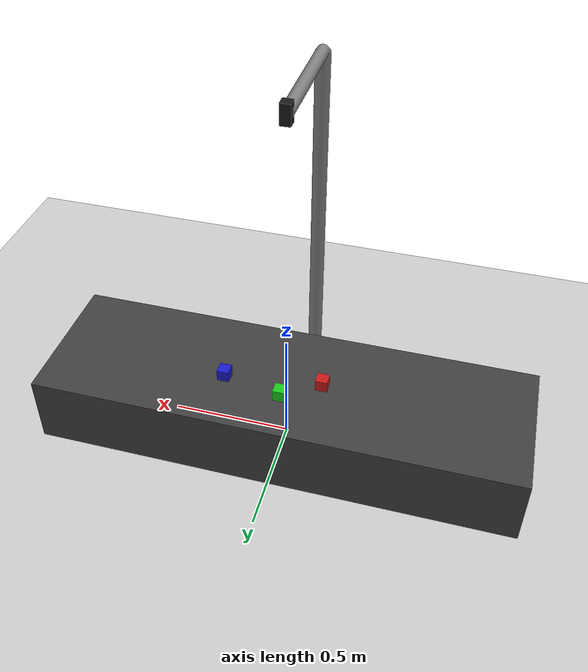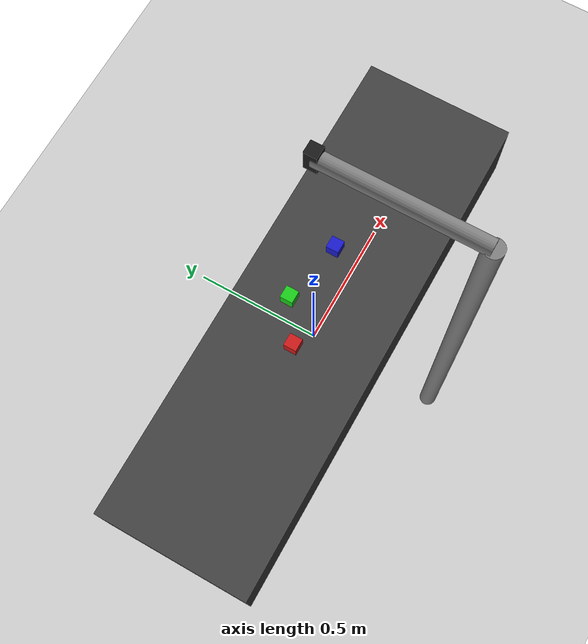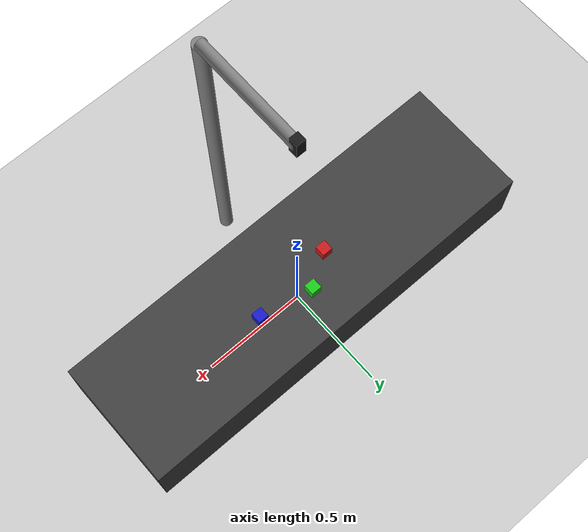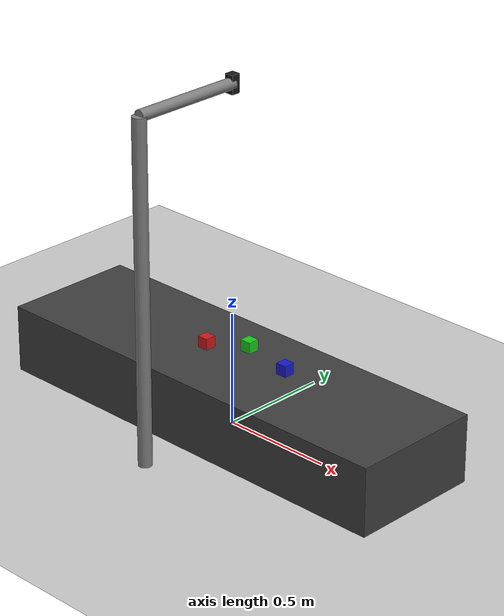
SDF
<?xml version="1.0" ?>
<sdf version="1.9">
  <world name="my_world">
    <physics name="1ms" type="ignored">
      <max_step_size>0.001</max_step_size>
      <real_time_factor>1.0</real_time_factor>
    </physics>

    <plugin
      filename="gz-sim-physics-system"
      name="gz::sim::systems::Physics">
    </plugin>
    <plugin
      filename="gz-sim-user-commands-system"
      name="gz::sim::systems::UserCommands">
    </plugin>
    <plugin
      filename="gz-sim-scene-broadcaster-system"
      name="gz::sim::systems::SceneBroadcaster">
    </plugin>
    <plugin
      filename="gz-sim-sensors-system"
      name="gz::sim::systems::Sensors">
      <render_engine>ogre2</render_engine>
    </plugin>

    <light type="directional" name="sun">
      <cast_shadows>true</cast_shadows>
      <pose>0 0 10 0 0 0</pose>
      <diffuse>0.8 0.8 0.8 1</diffuse>
      <specular>0.2 0.2 0.2 1</specular>
      <attenuation>
        <range>1000</range>
        <constant>0.9</constant>
        <linear>0.01</linear>
        <quadratic>0.001</quadratic>
      </attenuation>
      <direction>-0.5 0.1 -0.9</direction>
    </light>

    <model name="ground_plane">
      <static>true</static>
      <link name="link">
        <collision name="collision">
          <geometry>
            <plane>
              <normal>0 0 1</normal>
              <size>100 100</size>
            </plane>
          </geometry>
        </collision>
        <visual name="visual">
          <geometry>
            <plane>
              <normal>0 0 1</normal>
              <size>100 100</size>
            </plane>
          </geometry>
          <material>
            <ambient>0.8 0.8 0.8 1</ambient>
            <diffuse>0.8 0.8 0.8 1</diffuse>
          </material>
        </visual>
      </link>
    </model>

    <model name="conveyor_base">
      <static>true</static>
      <pose>0 0 0.1 0 0 0</pose>
      <link name="link">
        <collision name="collision">
          <geometry>
            <box>
              <size>2.0 0.6 0.4</size>
            </box>
          </geometry>
        </collision>
        <visual name="visual">
          <geometry>
            <box>
              <size>2.0 0.6 0.4</size>
            </box>
          </geometry>
          <material>
            <ambient>0.25 0.25 0.25 1</ambient>
            <diffuse>0.25 0.25 0.25 1</diffuse>
          </material>
        </visual>
      </link>
    </model>

    <model name="camera_mount">
      <static>true</static>
      <pose>0 -0.5 0 0 0 0</pose>

      <link name="vertical_post">
        <pose>0 0 0.75 0 0 0</pose>
        <collision name="collision">
          <geometry>
            <cylinder>
              <radius>0.03</radius>
              <length>1.5</length>
            </cylinder>
          </geometry>
        </collision>
        <visual name="visual">
          <geometry>
            <cylinder>
              <radius>0.03</radius>
              <length>1.5</length>
            </cylinder>
          </geometry>
          <material>
            <ambient>0.5 0.5 0.5 1</ambient>
            <diffuse>0.5 0.5 0.5 1</diffuse>
          </material>
        </visual>
      </link>

      <link name="horizontal_arm">
        <pose>0 0.25 1.5 1.5708 0 0</pose>
        <collision name="collision">
          <geometry>
            <cylinder>
              <radius>0.025</radius>
              <length>0.5</length>
            </cylinder>
          </geometry>
        </collision>
        <visual name="visual">
          <geometry>
            <cylinder>
              <radius>0.025</radius>
              <length>0.5</length>
            </cylinder>
          </geometry>
          <material>
            <ambient>0.5 0.5 0.5 1</ambient>
            <diffuse>0.5 0.5 0.5 1</diffuse>
          </material>
        </visual>
      </link>

      <link name="camera_link">
        <pose>0 0.5 1.5 0 1.5708 1.5708</pose>

        <inertial>
          <mass>0.1</mass>
          <inertia>
            <ixx>0.0001</ixx>
            <iyy>0.0001</iyy>
            <izz>0.0001</izz>
            <ixy>0.0</ixy>
            <ixz>0.0</ixz>
            <iyz>0.0</iyz>
          </inertia>
        </inertial>

        <collision name="collision">
          <geometry>
            <box>
              <size>0.08 0.04 0.04</size>
            </box>
          </geometry>
        </collision>

        <visual name="visual">
          <geometry>
            <box>
              <size>0.08 0.04 0.04</size>
            </box>
          </geometry>
          <material>
            <ambient>0.1 0.1 0.1 1</ambient>
            <diffuse>0.1 0.1 0.1 1</diffuse>
          </material>
        </visual>

        <sensor name="conveyor_rgbd" type="rgbd_camera">
          <always_on>true</always_on>
          <update_rate>15</update_rate>
          <visualize>true</visualize>
          <topic>/conveyor_camera</topic>

          <camera>
            <horizontal_fov>1.047</horizontal_fov>
            <image>
              <width>1920</width>
              <height>1200</height>
              <format>R8G8B8</format>
            </image>
            <clip>
              <near>0.05</near>
              <far>3.0</far>
            </clip>
          </camera>
        </sensor>
      </link>
    </model>

    <model name="cube_1">
      <static>false</static>
      <pose>-0.15 0 0.325 0 0 0</pose>
      <link name="link">
        <inertial>
          <mass>0.1</mass>
          <inertia>
            <ixx>0.0000417</ixx>
            <iyy>0.0000417</iyy>
            <izz>0.0000417</izz>
            <ixy>0.0</ixy>
            <ixz>0.0</ixz>
            <iyz>0.0</iyz>
          </inertia>
        </inertial>

        <collision name="collision">
          <geometry>
            <box>
              <size>0.05 0.05 0.05</size>
            </box>
          </geometry>
        </collision>

        <visual name="visual">
          <geometry>
            <box>
              <size>0.05 0.05 0.05</size>
            </box>
          </geometry>
          <material>
            <ambient>0.8 0.1 0.1 1</ambient>
            <diffuse>0.8 0.1 0.1 1</diffuse>
          </material>
        </visual>
      </link>
    </model>

    <model name="cube_2">
      <static>false</static>
      <pose>0 0.1 0.325 0 0 0</pose>
      <link name="link">
        <inertial>
          <mass>0.1</mass>
          <inertia>
            <ixx>0.0000417</ixx>
            <iyy>0.0000417</iyy>
            <izz>0.0000417</izz>
            <ixy>0.0</ixy>
            <ixz>0.0</ixz>
            <iyz>0.0</iyz>
          </inertia>
        </inertial>

        <collision name="collision">
          <geometry>
            <box>
              <size>0.05 0.05 0.05</size>
            </box>
          </geometry>
        </collision>

        <visual name="visual">
          <geometry>
            <box>
              <size>0.05 0.05 0.05</size>
            </box>
          </geometry>
          <material>
            <ambient>0.1 0.8 0.1 1</ambient>
            <diffuse>0.1 0.8 0.1 1</diffuse>
          </material>
        </visual>
      </link>
    </model>

    <model name="cube_3">
      <static>false</static>
      <pose>0.25 0.05 0.325 0 0 0</pose>
      <link name="link">
        <inertial>
          <mass>0.1</mass>
          <inertia>
            <ixx>0.0000417</ixx>
            <iyy>0.0000417</iyy>
            <izz>0.0000417</izz>
            <ixy>0.0</ixy>
            <ixz>0.0</ixz>
            <iyz>0.0</iyz>
          </inertia>
        </inertial>

        <collision name="collision">
          <geometry>
            <box>
              <size>0.05 0.05 0.05</size>
            </box>
          </geometry>
        </collision>

        <visual name="visual">
          <geometry>
            <box>
              <size>0.05 0.05 0.05</size>
            </box>
          </geometry>
          <material>
            <ambient>0.1 0.1 0.8 1</ambient>
            <diffuse>0.1 0.1 0.8 1</diffuse>
          </material>
        </visual>
      </link>
    </model>
  </world>
</sdf>
